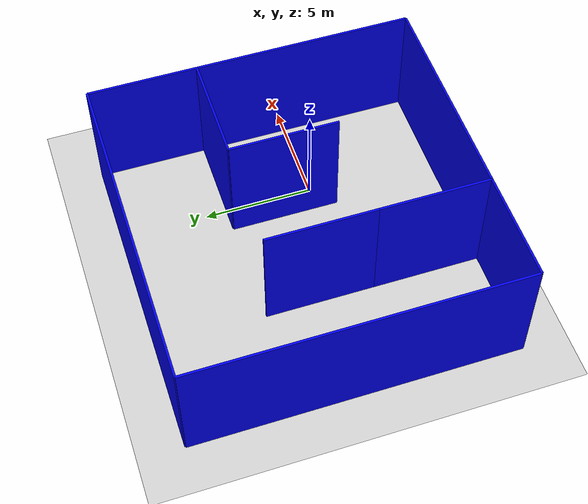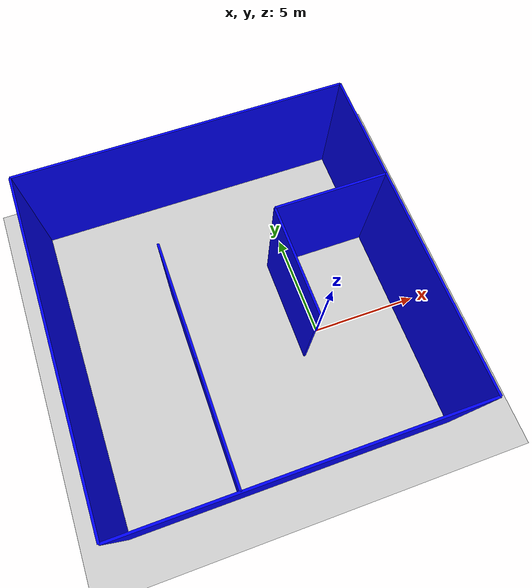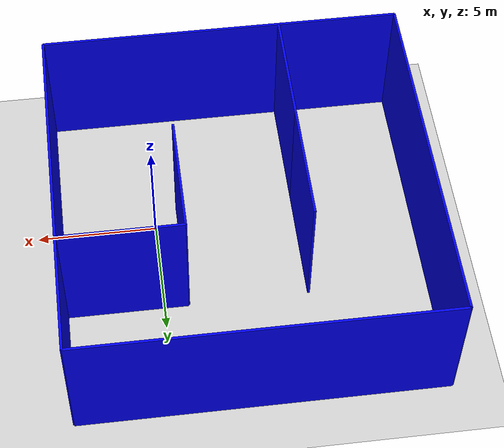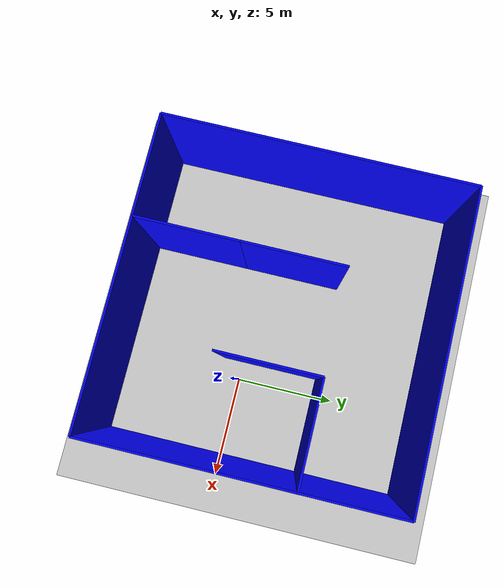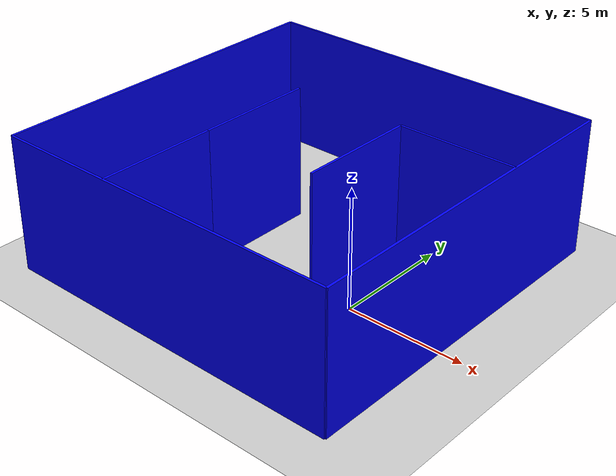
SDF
<sdf version='1.12'>
  <world name='ackermann'>
    <physics name='1ms' type='ignored'>
      <max_step_size>0.001</max_step_size>
      <real_time_factor>1</real_time_factor>
      <real_time_update_rate>1000</real_time_update_rate>
    </physics>
    <plugin name='gz::sim::systems::Physics' filename='gz-sim-physics-system'/>
    <plugin name='gz::sim::systems::UserCommands' filename='gz-sim-user-commands-system'/>
    <plugin name='gz::sim::systems::SceneBroadcaster' filename='gz-sim-scene-broadcaster-system'/>
    <gravity>0 0 -9.8000000000000007</gravity>
    <magnetic_field>5.5644999999999998e-06 2.2875799999999999e-05 -4.2388400000000002e-05</magnetic_field>
    <atmosphere type='adiabatic'/>
    <scene>
      <ambient>0.400000006 0.400000006 0.400000006 1</ambient>
      <background>0.699999988 0.699999988 0.699999988 1</background>
      <shadows>true</shadows>
    </scene>
    <model name='ground_plane'>
      <static>true</static>
      <link name='link'>
        <collision name='collision'>
          <geometry>
            <plane>
              <normal>0 0 1</normal>
              <size>500 500</size>
            </plane>
          </geometry>
          <surface>
            <friction>
              <ode>
                <mu>50</mu>
              </ode>
              <bullet>
                <friction>1</friction>
                <rolling_friction>0.10000000000000001</rolling_friction>
              </bullet>
            </friction>
            <bounce/>
            <contact/>
          </surface>
        </collision>
        <visual name='visual'>
          <geometry>
            <plane>
              <normal>0 0 1</normal>
              <size>500 500</size>
            </plane>
          </geometry>
          <material>
            <ambient>0.800000012 0.800000012 0.800000012 1</ambient>
            <diffuse>0.800000012 0.800000012 0.800000012 1</diffuse>
            <specular>0.800000012 0.800000012 0.800000012 1</specular>
          </material>
        </visual>
        <pose>0 0 0 0 0 0</pose>
        <inertial>
          <pose>0 0 0 0 0 0</pose>
          <mass>1</mass>
          <inertia>
            <ixx>1</ixx>
            <ixy>0</ixy>
            <ixz>0</ixz>
            <iyy>1</iyy>
            <iyz>0</iyz>
            <izz>1</izz>
          </inertia>
        </inertial>
        <enable_wind>false</enable_wind>
      </link>
      <pose>0 0 0 0 0 0</pose>
      <self_collide>false</self_collide>
    </model>
    <model name='wall_1'>
      <pose>4 1.5 2.7999999999999998 0 0 1.5707963267948963</pose>
      <link name='wall_link'>
        <inertial>
          <inertia>
            <ixx>0.16666</ixx>
            <ixy>0</ixy>
            <ixz>0</ixz>
            <iyy>0.16666</iyy>
            <iyz>0</iyz>
            <izz>0.16666</izz>
          </inertia>
          <mass>1</mass>
          <pose>0 0 0 0 0 0</pose>
        </inertial>
        <collision name='box_collision'>
          <geometry>
            <box>
              <size>15 0.10000000000000001 5.7000000000000002</size>
            </box>
          </geometry>
          <surface>
            <friction>
              <ode/>
            </friction>
            <bounce/>
            <contact/>
          </surface>
        </collision>
        <visual name='box_visual'>
          <geometry>
            <box>
              <size>15 0.10000000000000001 5.7000000000000002</size>
            </box>
          </geometry>
          <material>
            <ambient>0 0 1 1</ambient>
            <diffuse>0 0 1 1</diffuse>
            <specular>1 1 1 1</specular>
          </material>
        </visual>
        <pose>0 0 0 0 0 0</pose>
        <enable_wind>false</enable_wind>
      </link>
      <static>false</static>
      <self_collide>false</self_collide>
    </model>
    <model name='wall_2'>
      <pose>-11 1.5 2.7999999999999998 0 0 1.5707963267948963</pose>
      <link name='wall_link'>
        <inertial>
          <inertia>
            <ixx>0.16666</ixx>
            <ixy>0</ixy>
            <ixz>0</ixz>
            <iyy>0.16666</iyy>
            <iyz>0</iyz>
            <izz>0.16666</izz>
          </inertia>
          <mass>1</mass>
          <pose>0 0 0 0 0 0</pose>
        </inertial>
        <collision name='box_collision'>
          <geometry>
            <box>
              <size>15 0.10000000000000001 5.7000000000000002</size>
            </box>
          </geometry>
          <surface>
            <friction>
              <ode/>
            </friction>
            <bounce/>
            <contact/>
          </surface>
        </collision>
        <visual name='box_visual'>
          <geometry>
            <box>
              <size>15 0.10000000000000001 5.7000000000000002</size>
            </box>
          </geometry>
          <material>
            <ambient>0 0 1 1</ambient>
            <diffuse>0 0 1 1</diffuse>
            <specular>1 1 1 1</specular>
          </material>
        </visual>
        <pose>0 0 0 0 0 0</pose>
        <enable_wind>false</enable_wind>
      </link>
      <static>false</static>
      <self_collide>false</self_collide>
    </model>
    <model name='wall_3'>
      <pose>-3.5 -6 2.7999999999999998 0 0 0</pose>
      <link name='wall_link'>
        <inertial>
          <inertia>
            <ixx>0.16666</ixx>
            <ixy>0</ixy>
            <ixz>0</ixz>
            <iyy>0.16666</iyy>
            <iyz>0</iyz>
            <izz>0.16666</izz>
          </inertia>
          <mass>1</mass>
          <pose>0 0 0 0 0 0</pose>
        </inertial>
        <collision name='box_collision'>
          <geometry>
            <box>
              <size>15 0.10000000000000001 5.7000000000000002</size>
            </box>
          </geometry>
          <surface>
            <friction>
              <ode/>
            </friction>
            <bounce/>
            <contact/>
          </surface>
        </collision>
        <visual name='box_visual'>
          <geometry>
            <box>
              <size>15 0.10000000000000001 5.7000000000000002</size>
            </box>
          </geometry>
          <material>
            <ambient>0 0 1 1</ambient>
            <diffuse>0 0 1 1</diffuse>
            <specular>1 1 1 1</specular>
          </material>
        </visual>
        <pose>0 0 0 0 0 0</pose>
        <enable_wind>false</enable_wind>
      </link>
      <static>false</static>
      <self_collide>false</self_collide>
    </model>
    <model name='wall_4'>
      <pose>-3.5 9 2.7999999999999998 0 0 0</pose>
      <link name='wall_link'>
        <inertial>
          <inertia>
            <ixx>0.16666</ixx>
            <ixy>0</ixy>
            <ixz>0</ixz>
            <iyy>0.16666</iyy>
            <iyz>0</iyz>
            <izz>0.16666</izz>
          </inertia>
          <mass>1</mass>
          <pose>0 0 0 0 0 0</pose>
        </inertial>
        <collision name='box_collision'>
          <geometry>
            <box>
              <size>15 0.10000000000000001 5.7000000000000002</size>
            </box>
          </geometry>
          <surface>
            <friction>
              <ode/>
            </friction>
            <bounce/>
            <contact/>
          </surface>
        </collision>
        <visual name='box_visual'>
          <geometry>
            <box>
              <size>15 0.10000000000000001 5.7000000000000002</size>
            </box>
          </geometry>
          <material>
            <ambient>0 0 1 1</ambient>
            <diffuse>0 0 1 1</diffuse>
            <specular>1 1 1 1</specular>
          </material>
        </visual>
        <pose>0 0 0 0 0 0</pose>
        <enable_wind>false</enable_wind>
      </link>
      <static>false</static>
      <self_collide>false</self_collide>
    </model>
    <model name='wall_3_1'>
      <pose>1.5 4 2.7999999999999998 0 0 0</pose>
      <link name='wall_link'>
        <inertial>
          <inertia>
            <ixx>0.16666</ixx>
            <ixy>0</ixy>
            <ixz>0</ixz>
            <iyy>0.16666</iyy>
            <iyz>0</iyz>
            <izz>0.16666</izz>
          </inertia>
          <mass>1</mass>
          <pose>0 0 0 0 0 0</pose>
        </inertial>
        <collision name='box_collision'>
          <geometry>
            <box>
              <size>5 0.10000000000000001 5.7000000000000002</size>
            </box>
          </geometry>
          <surface>
            <friction>
              <ode/>
            </friction>
            <bounce/>
            <contact/>
          </surface>
        </collision>
        <visual name='box_visual'>
          <geometry>
            <box>
              <size>5 0.10000000000000001 5.7000000000000002</size>
            </box>
          </geometry>
          <material>
            <ambient>0 0 1 1</ambient>
            <diffuse>0 0 1 1</diffuse>
            <specular>1 1 1 1</specular>
          </material>
        </visual>
        <pose>0 0 0 0 0 0</pose>
        <enable_wind>false</enable_wind>
      </link>
      <static>false</static>
      <self_collide>false</self_collide>
    </model>
    <model name='wall_1_1'>
      <pose degrees="true">-1 1.5 2.7999999999999998 0 0 90</pose>
      <link name='wall_link'>
        <inertial>
          <inertia>
            <ixx>0.16666</ixx>
            <ixy>0</ixy>
            <ixz>0</ixz>
            <iyy>0.16666</iyy>
            <iyz>0</iyz>
            <izz>0.16666</izz>
          </inertia>
          <mass>1</mass>
          <pose>0 0 0 0 0 0</pose>
        </inertial>
        <collision name='box_collision'>
          <geometry>
            <box>
              <size>5 0.10000000000000001 5.7000000000000002</size>
            </box>
          </geometry>
          <surface>
            <friction>
              <ode/>
            </friction>
            <bounce/>
            <contact/>
          </surface>
        </collision>
        <visual name='box_visual'>
          <geometry>
            <box>
              <size>5 0.10000000000000001 5.7000000000000002</size>
            </box>
          </geometry>
          <material>
            <ambient>0 0 1 1</ambient>
            <diffuse>0 0 1 1</diffuse>
            <specular>1 1 1 1</specular>
          </material>
        </visual>
        <pose>0 0 0 0 0 0</pose>
        <enable_wind>false</enable_wind>
      </link>
      <static>false</static>
      <self_collide>false</self_collide>
    </model>
    <model name='wall_1_2'>
      <pose degrees="true">-6 1.5 2.7999999999999998 0 0 90</pose>
      <link name='wall_link'>
        <inertial>
          <inertia>
            <ixx>0.16666</ixx>
            <ixy>0</ixy>
            <ixz>0</ixz>
            <iyy>0.16666</iyy>
            <iyz>0</iyz>
            <izz>0.16666</izz>
          </inertia>
          <mass>1</mass>
          <pose>0 0 0 0 0 0</pose>
        </inertial>
        <collision name='box_collision'>
          <geometry>
            <box>
              <size>5 0.10000000000000001 5.7000000000000002</size>
            </box>
          </geometry>
          <surface>
            <friction>
              <ode/>
            </friction>
            <bounce/>
            <contact/>
          </surface>
        </collision>
        <visual name='box_visual'>
          <geometry>
            <box>
              <size>5 0.10000000000000001 5.7000000000000002</size>
            </box>
          </geometry>
          <material>
            <ambient>0 0 1 1</ambient>
            <diffuse>0 0 1 1</diffuse>
            <specular>1 1 1 1</specular>
          </material>
        </visual>
        <pose>0 0 0 0 0 0</pose>
        <enable_wind>false</enable_wind>
      </link>
      <static>false</static>
      <self_collide>false</self_collide>
    </model>
    <model name='wall_1_3'>
      <pose degrees="true">-6 -3.5 2.7999999999999998 0 0 90</pose>
      <link name='wall_link'>
        <inertial>
          <inertia>
            <ixx>0.16666</ixx>
            <ixy>0</ixy>
            <ixz>0</ixz>
            <iyy>0.16666</iyy>
            <iyz>0</iyz>
            <izz>0.16666</izz>
          </inertia>
          <mass>1</mass>
          <pose>0 0 0 0 0 0</pose>
        </inertial>
        <collision name='box_collision'>
          <geometry>
            <box>
              <size>5 0.10000000000000001 5.7000000000000002</size>
            </box>
          </geometry>
          <surface>
            <friction>
              <ode/>
            </friction>
            <bounce/>
            <contact/>
          </surface>
        </collision>
        <visual name='box_visual'>
          <geometry>
            <box>
              <size>5 0.10000000000000001 5.7000000000000002</size>
            </box>
          </geometry>
          <material>
            <ambient>0 0 1 1</ambient>
            <diffuse>0 0 1 1</diffuse>
            <specular>1 1 1 1</specular>
          </material>
        </visual>
        <pose>0 0 0 0 0 0</pose>
        <enable_wind>false</enable_wind>
      </link>
      <static>false</static>
      <self_collide>false</self_collide>
    </model>
    <light name='sun' type='directional'>
      <pose>0 0 10 0 0 0</pose>
      <cast_shadows>true</cast_shadows>
      <intensity>1</intensity>
      <direction>-0.5 0.10000000000000001 -0.90000000000000002</direction>
      <diffuse>1 1 1 1</diffuse>
      <specular>0.5 0.5 0.5 1</specular>
      <attenuation>
        <range>1000</range>
        <linear>0.01</linear>
        <constant>0.90000000000000002</constant>
        <quadratic>0.001</quadratic>
      </attenuation>
      <spot>
        <inner_angle>0</inner_angle>
        <outer_angle>0</outer_angle>
        <falloff>0</falloff>
      </spot>
    </light>
  </world>
</sdf>
